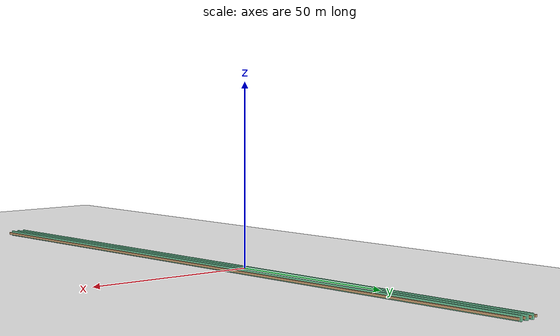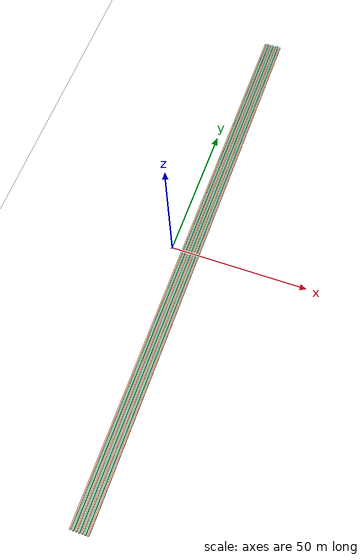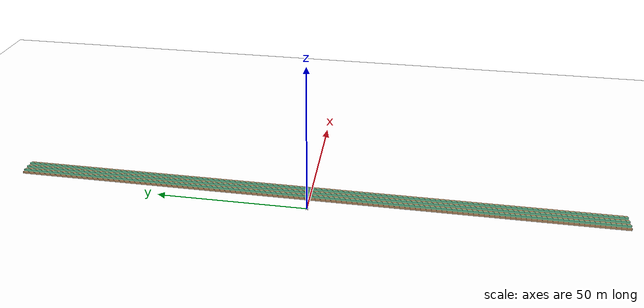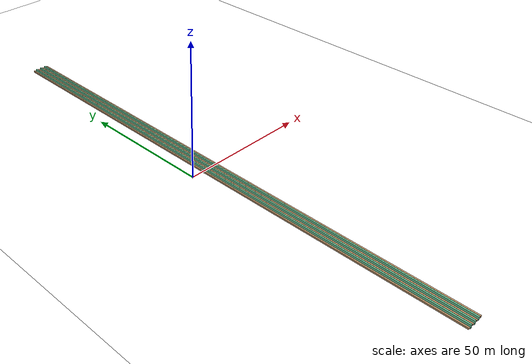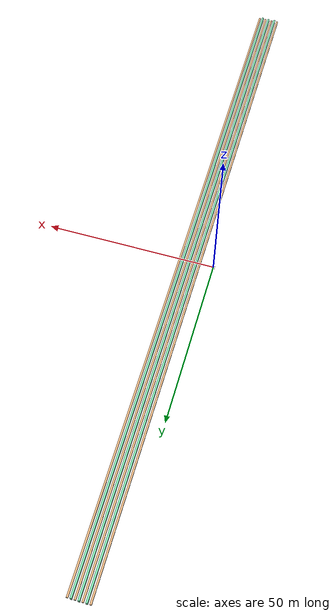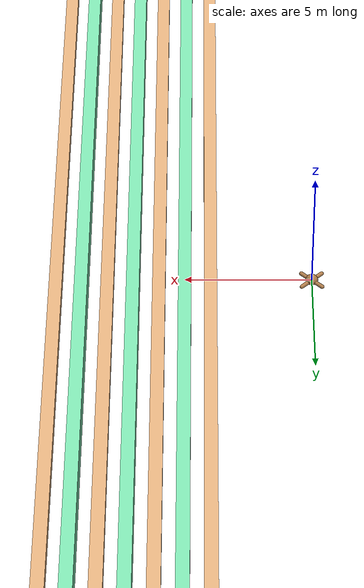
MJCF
<mujoco model="ant">
  <asset>
    <texture name="skybox" type="skybox" builtin="gradient" rgb1=".2 .3 .4" rgb2="0 0 0" width="800" height="800" mark="random" markrgb="1 1 1"/>
    <texture name="grid" type="2d" builtin="checker" rgb1=".2 .1 .2" rgb2=".3 .2 .3" width="300" height="300" mark="edge" markrgb=".3 .2 .3"/>
    <material name="grid" texture="grid" texrepeat="1 1" texuniform="true" reflectance=".2"/>
    <material name="self" rgba=".7 .5 .3 1"/>
  </asset>
  <visual>
    <headlight ambient=".4 .4 .4" diffuse=".8 .8 .8" specular="0.1 0.1 0.1"/>
    <map znear=".001"/>
    <quality shadowsize="16384"/>
  </visual>
  <compiler angle="degree" coordinate="global" inertiafromgeom="true"/>
  <option integrator="RK4" timestep="0.01"/>
  <default>
    <joint armature="1" damping="1" limited="true"/>
    <geom conaffinity="0" condim="3" density="5.0" friction="1 0.5 0.5" margin="0.01" rgba=".7 .5 .3 1"/>
  </default>
  <worldbody>
    <light cutoff="100" diffuse="1 1 1" dir="0.3 0 -1.3" directional="true" exponent="1" pos="-30 0 130" specular=".1 .1 .1"/>
    <geom conaffinity="1" condim="3" name="floor" pos="0 0 0" rgba="1 1 1 1" size="200 200 .125" type="plane" material="grid"/>
    <geom conaffinity="1" condim="3" name="wall_box_1" type="box" pos="4 0 1" size="0.25 100 0.3" rgba="0.9 0.7 0.5 1" />
    <geom conaffinity="1" condim="3" name="wall_box_2" type="box" pos="5 0 1" size="0.25 100 0.7" rgba="0.5 0.9 0.7 1" />
    <geom conaffinity="1" condim="3" name="wall_box_3" type="box" pos="6 0 1" size="0.25 100 0.3" rgba="0.9 0.7 0.5 1" />
    <geom conaffinity="1" condim="3" name="wall_box_4" type="box" pos="7 0 1" size="0.25 100 0.7" rgba="0.5 0.9 0.7 1" />
    <geom conaffinity="1" condim="3" name="wall_box_5" type="box" pos="8 0 1" size="0.25 100 0.3" rgba="0.9 0.7 0.5 1" />
    <geom conaffinity="1" condim="3" name="wall_box_6" type="box" pos="9 0 1" size="0.25 100 0.7" rgba="0.5 0.9 0.7 1" />
    <geom conaffinity="1" condim="3" name="wall_box_7" type="box" pos="10 0 1" size="0.25 100 0.3" rgba="0.9 0.7 0.5 1" />
    <body name="0" pos="0 0 0">
      <camera name="track" mode="trackcom" pos="0 -3 0.3" xyaxes="1 0 0 0 0 1"/>
      <geom pos="0 0 0" size="0.25" type="sphere"/>
      <joint armature="0" damping="0" limited="false" margin="0.01" name="root" pos="0 0 0" type="free"/>
      <body name="1" pos="0 0 0">
        <joint axis="-0.707107 0.707107 0" name="1_joint" pos="0 0 0" range="-30 30" type="hinge"/>
        <geom fromto="0 0 0 0.4 0.4 0" size="0.08" type="capsule"/>
      </body>
      <body name="2" pos="0 0 0">
        <joint axis="-0.707107 -0.707107 0" name="2_joint" pos="0 0 0" range="-30 30" type="hinge"/>
        <geom fromto="0 0 0 -0.4 0.4 0" size="0.08" type="capsule"/>
      </body>
      <body name="3" pos="0 0 0">
        <joint axis="0.707107 -0.707107 0" name="3_joint" pos="0 0 0" range="-30 30" type="hinge"/>
        <geom fromto="0 0 0 -0.4 -0.4 0" size="0.08" type="capsule"/>
      </body>
      <body name="4" pos="0 0 0">
        <joint axis="0.707107 0.707107 0" name="4_joint" pos="0 0 0" range="-30 30" type="hinge"/>
        <geom fromto="0 0 0 0.4 -0.4 0" size="0.08" type="capsule"/>
      </body>
    </body>
  </worldbody>
  <actuator>
    <motor ctrllimited="true" ctrlrange="-1.0 1.0" joint="1_joint" gear="150" name="1_joint"/>
    <motor ctrllimited="true" ctrlrange="-1.0 1.0" joint="2_joint" gear="150" name="2_joint"/>
    <motor ctrllimited="true" ctrlrange="-1.0 1.0" joint="3_joint" gear="150" name="3_joint"/>
    <motor ctrllimited="true" ctrlrange="-1.0 1.0" joint="4_joint" gear="150" name="4_joint"/>
  </actuator>
</mujoco>
